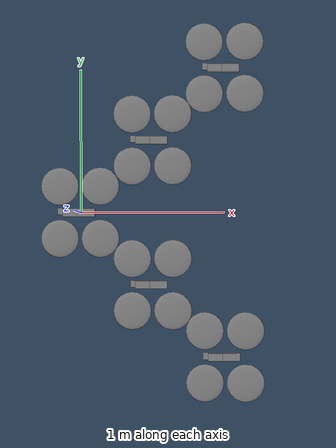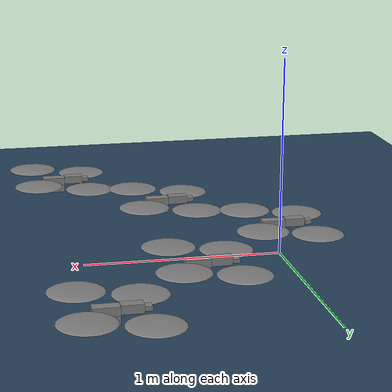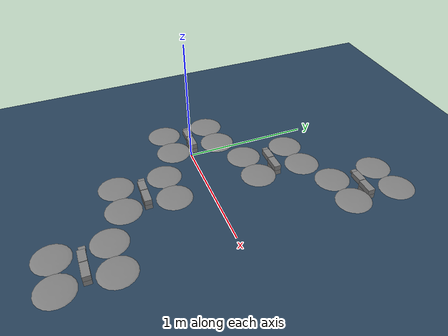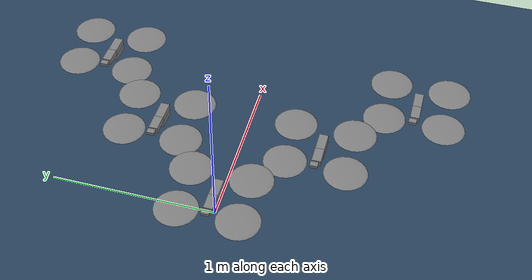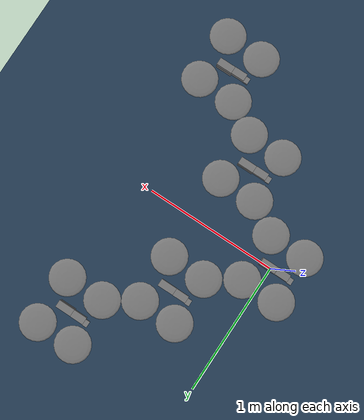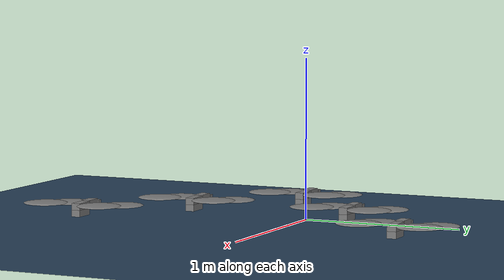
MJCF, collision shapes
<mujoco model="Skydio X2 scene">
  <include file="x2_5.xml"/>

  <statistic center="0 0 0.1" extent="0.6" meansize=".05"/>

  <visual>
    <headlight diffuse="0.6 0.6 0.6" ambient="0.3 0.3 0.3" specular="0 0 0"/>
    <rgba haze="0.15 0.25 0.35 1"/>
    <global azimuth="-20" elevation="-20" ellipsoidinertia="true"/>
  </visual>

  <asset>
    <texture type="skybox" builtin="gradient" rgb1="0.3 0.5 0.7" rgb2="0 0 0" width="512" height="3072"/>
    <texture type="2d" name="groundplane" builtin="checker" mark="edge" rgb1="0.2 0.3 0.4" rgb2="0.1 0.2 0.3"
      markrgb="0.8 0.8 0.8" width="300" height="300"/>
    <material name="groundplane" texture="groundplane" texuniform="true" texrepeat="5 5" reflectance="0.2"/>
  </asset>

  <worldbody>
    <light pos="0 0 1.5" dir="0 0 -1" directional="true"/>
    <geom name="floor" size="0 0 0.05" type="plane" material="groundplane"/>
  </worldbody>
</mujoco>

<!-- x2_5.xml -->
<mujoco model="Skydio X2">
    <compiler autolimits="true" assetdir="assets"/>

    <option timestep="0.01" density="1.225" viscosity="1.8e-5"/>

    <default>
        <default class="x2">
            <geom mass="0"/>
            <motor ctrlrange="0 13"/>
            <mesh scale="0.01 0.01 0.01"/>
            <default class="visual">
                <geom group="2" type="mesh" contype="0" conaffinity="0"/>
            </default>
            <default class="collision">
                <geom group="3" type="box"/>
                <default class="rotor">
                    <geom type="ellipsoid" size=".13 .13 .01"/>
                </default>
            </default>
            <site group="5"/>
        </default>
    </default>

    <asset>
        <texture type="2d" file="X2_lowpoly_texture_SpinningProps_1024.png"/>
        <material name="phong3SG" texture="X2_lowpoly_texture_SpinningProps_1024"/>
        <material name="invisible" rgba="0 0 0 0"/>
        <mesh class="x2" file="X2_lowpoly.obj"/>
    </asset>

    <worldbody>
        <light name="spotlight" mode="targetbodycom" target="x2_1" pos="0 -1 2"/>
        <body name="x2_1" pos="0.0 0.0 0.1" childclass="x2">
            <freejoint/>
            <camera name="q1_track" pos="-1 0 .5" xyaxes="0 -1 0 1 0 2" mode="trackcom"/>
            <site name="q1_imu" pos="0 0 .02"/>
            <geom material="phong3SG" mesh="X2_lowpoly" class="visual" quat="0 0 1 1"/>
            <geom class="collision" size=".06 .027 .02" pos=".04 0 .02"/>
            <geom class="collision" size=".06 .027 .02" pos=".04 0 .06"/>
            <geom class="collision" size=".05 .027 .02" pos="-.07 0 .065"/>
            <geom class="collision" size=".023 .017 .01" pos="-.137 .008 .065" quat="1 0 0 1"/>
            <geom name="q1_rotor1" class="rotor" pos="-.14 -.18 .05" mass=".25"/>
            <geom name="q1_rotor2" class="rotor" pos="-.14 .18 .05" mass=".25"/>
            <geom name="q1_rotor3" class="rotor" pos=".14 .18 .08" mass=".25"/>
            <geom name="q1_rotor4" class="rotor" pos=".14 -.18 .08" mass=".25"/>
            <geom size=".16 .04 .02" pos="0 0 0.02" type="ellipsoid" mass=".325" class="visual" material="invisible"/>
            <site name="q1_thrust1" pos="-.14 -.18 .05"/>
            <site name="q1_thrust2" pos="-.14 .18 .05"/>
            <site name="q1_thrust3" pos=".14 .18 .08"/>
            <site name="q1_thrust4" pos=".14 -.18 .08"/>
        </body>
        <body name="x2_2" pos="0.5 -0.5 0.1" childclass="x2">
            <freejoint/>
            <camera name="q2_track" pos="-1 0 .5" xyaxes="0 -1 0 1 0 2" mode="trackcom"/>
            <site name="q2_imu" pos="0 0 .02"/>
            <geom material="phong3SG" mesh="X2_lowpoly" class="visual" quat="0 0 1 1"/>
            <geom class="collision" size=".06 .027 .02" pos=".04 0 .02"/>
            <geom class="collision" size=".06 .027 .02" pos=".04 0 .06"/>
            <geom class="collision" size=".05 .027 .02" pos="-.07 0 .065"/>
            <geom class="collision" size=".023 .017 .01" pos="-.137 .008 .065" quat="1 0 0 1"/>
            <geom name="q2_rotor1" class="rotor" pos="-.14 -.18 .05" mass=".25"/>
            <geom name="q2_rotor2" class="rotor" pos="-.14 .18 .05" mass=".25"/>
            <geom name="q2_rotor3" class="rotor" pos=".14 .18 .08" mass=".25"/>
            <geom name="q2_rotor4" class="rotor" pos=".14 -.18 .08" mass=".25"/>
            <geom size=".16 .04 .02" pos="0 0 0.02" type="ellipsoid" mass=".325" class="visual" material="invisible"/>
            <site name="q2_thrust1" pos="-.14 -.18 .05"/>
            <site name="q2_thrust2" pos="-.14 .18 .05"/>
            <site name="q2_thrust3" pos=".14 .18 .08"/>
            <site name="q2_thrust4" pos=".14 -.18 .08"/>
        </body>
        <body name="x2_3" pos="0.5 0.5 0.1" childclass="x2">
            <freejoint/>
            <camera name="q3_track" pos="-1 0 .5" xyaxes="0 -1 0 1 0 2" mode="trackcom"/>
            <site name="q3_imu" pos="0 0 .02"/>
            <geom material="phong3SG" mesh="X2_lowpoly" class="visual" quat="0 0 1 1"/>
            <geom class="collision" size=".06 .027 .02" pos=".04 0 .02"/>
            <geom class="collision" size=".06 .027 .02" pos=".04 0 .06"/>
            <geom class="collision" size=".05 .027 .02" pos="-.07 0 .065"/>
            <geom class="collision" size=".023 .017 .01" pos="-.137 .008 .065" quat="1 0 0 1"/>
            <geom name="q3_rotor1" class="rotor" pos="-.14 -.18 .05" mass=".25"/>
            <geom name="q3_rotor2" class="rotor" pos="-.14 .18 .05" mass=".25"/>
            <geom name="q3_rotor3" class="rotor" pos=".14 .18 .08" mass=".25"/>
            <geom name="q3_rotor4" class="rotor" pos=".14 -.18 .08" mass=".25"/>
            <geom size=".16 .04 .02" pos="0 0 0.02" type="ellipsoid" mass=".325" class="visual" material="invisible"/>
            <site name="q3_thrust1" pos="-.14 -.18 .05"/>
            <site name="q3_thrust2" pos="-.14 .18 .05"/>
            <site name="q3_thrust3" pos=".14 .18 .08"/>
            <site name="q3_thrust4" pos=".14 -.18 .08"/>
        </body>
        <body name="x2_4" pos="1.0 -1.0 0.1" childclass="x2">
            <freejoint/>
            <camera name="q4_track" pos="-1 0 .5" xyaxes="0 -1 0 1 0 2" mode="trackcom"/>
            <site name="q4_imu" pos="0 0 .02"/>
            <geom material="phong3SG" mesh="X2_lowpoly" class="visual" quat="0 0 1 1"/>
            <geom class="collision" size=".06 .027 .02" pos=".04 0 .02"/>
            <geom class="collision" size=".06 .027 .02" pos=".04 0 .06"/>
            <geom class="collision" size=".05 .027 .02" pos="-.07 0 .065"/>
            <geom class="collision" size=".023 .017 .01" pos="-.137 .008 .065" quat="1 0 0 1"/>
            <geom name="q4_rotor1" class="rotor" pos="-.14 -.18 .05" mass=".25"/>
            <geom name="q4_rotor2" class="rotor" pos="-.14 .18 .05" mass=".25"/>
            <geom name="q4_rotor3" class="rotor" pos=".14 .18 .08" mass=".25"/>
            <geom name="q4_rotor4" class="rotor" pos=".14 -.18 .08" mass=".25"/>
            <geom size=".16 .04 .02" pos="0 0 0.02" type="ellipsoid" mass=".325" class="visual" material="invisible"/>
            <site name="q4_thrust1" pos="-.14 -.18 .05"/>
            <site name="q4_thrust2" pos="-.14 .18 .05"/>
            <site name="q4_thrust3" pos=".14 .18 .08"/>
            <site name="q4_thrust4" pos=".14 -.18 .08"/>
        </body>
        <body name="x2_5" pos="1.0 1.0 0.1" childclass="x2">
            <freejoint/>
            <camera name="q5_track" pos="-1 0 .5" xyaxes="0 -1 0 1 0 2" mode="trackcom"/>
            <site name="q5_imu" pos="0 0 .02"/>
            <geom material="phong3SG" mesh="X2_lowpoly" class="visual" quat="0 0 1 1"/>
            <geom class="collision" size=".06 .027 .02" pos=".04 0 .02"/>
            <geom class="collision" size=".06 .027 .02" pos=".04 0 .06"/>
            <geom class="collision" size=".05 .027 .02" pos="-.07 0 .065"/>
            <geom class="collision" size=".023 .017 .01" pos="-.137 .008 .065" quat="1 0 0 1"/>
            <geom name="q5_rotor1" class="rotor" pos="-.14 -.18 .05" mass=".25"/>
            <geom name="q5_rotor2" class="rotor" pos="-.14 .18 .05" mass=".25"/>
            <geom name="q5_rotor3" class="rotor" pos=".14 .18 .08" mass=".25"/>
            <geom name="q5_rotor4" class="rotor" pos=".14 -.18 .08" mass=".25"/>
            <geom size=".16 .04 .02" pos="0 0 0.02" type="ellipsoid" mass=".325" class="visual" material="invisible"/>
            <site name="q5_thrust1" pos="-.14 -.18 .05"/>
            <site name="q5_thrust2" pos="-.14 .18 .05"/>
            <site name="q5_thrust3" pos=".14 .18 .08"/>
            <site name="q5_thrust4" pos=".14 -.18 .08"/>
        </body>
    </worldbody>

    <actuator>
        <motor class="x2" name="q1_thrust1" site="q1_thrust1" gear="0 0 1 0 0  .0201"/>
        <motor class="x2" name="q1_thrust2" site="q1_thrust2" gear="0 0 1 0 0 -.0201"/>
        <motor class="x2" name="q1_thrust3" site="q1_thrust3" gear="0 0 1 0 0  .0201"/>
        <motor class="x2" name="q1_thrust4" site="q1_thrust4" gear="0 0 1 0 0 -.0201"/>

        <motor class="x2" name="q2_thrust1" site="q2_thrust1" gear="0 0 1 0 0  .0201"/>
        <motor class="x2" name="q2_thrust2" site="q2_thrust2" gear="0 0 1 0 0 -.0201"/>
        <motor class="x2" name="q2_thrust3" site="q2_thrust3" gear="0 0 1 0 0  .0201"/>
        <motor class="x2" name="q2_thrust4" site="q2_thrust4" gear="0 0 1 0 0 -.0201"/>

        <motor class="x2" name="q3_thrust1" site="q3_thrust1" gear="0 0 1 0 0  .0201"/>
        <motor class="x2" name="q3_thrust2" site="q3_thrust2" gear="0 0 1 0 0 -.0201"/>
        <motor class="x2" name="q3_thrust3" site="q3_thrust3" gear="0 0 1 0 0  .0201"/>
        <motor class="x2" name="q3_thrust4" site="q3_thrust4" gear="0 0 1 0 0 -.0201"/>

        <motor class="x2" name="q4_thrust1" site="q4_thrust1" gear="0 0 1 0 0  .0201"/>
        <motor class="x2" name="q4_thrust2" site="q4_thrust2" gear="0 0 1 0 0 -.0201"/>
        <motor class="x2" name="q4_thrust3" site="q4_thrust3" gear="0 0 1 0 0  .0201"/>
        <motor class="x2" name="q4_thrust4" site="q4_thrust4" gear="0 0 1 0 0 -.0201"/>

        <motor class="x2" name="q5_thrust1" site="q5_thrust1" gear="0 0 1 0 0  .0201"/>
        <motor class="x2" name="q5_thrust2" site="q5_thrust2" gear="0 0 1 0 0 -.0201"/>
        <motor class="x2" name="q5_thrust3" site="q5_thrust3" gear="0 0 1 0 0  .0201"/>
        <motor class="x2" name="q5_thrust4" site="q5_thrust4" gear="0 0 1 0 0 -.0201"/>
    </actuator>

    <keyframe>
        <key name="hover"
             qpos="0 0 .3 1 0 0 0 0.5 -0.5 0.3 1 0 0 0 0.5 0.5 0.3 1 0 0 0 1.0 -1.0 0.3 1 0 0 0 1.0 1.0 0.3 1 0 0 0"
             ctrl="3.2495625 3.2495625 3.2495625 3.2495625 3.2495625 3.2495625 3.2495625 3.2495625 3.2495625 3.2495625 3.2495625 3.2495625 3.2495625 3.2495625 3.2495625 3.2495625 3.2495625 3.2495625 3.2495625 3.2495625"/>
    </keyframe>

    <sensor>
        <gyro name="q1_body_gyro" site="q1_imu"/>
        <accelerometer name="q1_body_linacc" site="q1_imu"/>
        <framequat name="q1_body_quat" objtype="site" objname="q1_imu"/>

        <gyro name="q2_body_gyro" site="q2_imu"/>
        <accelerometer name="q2_body_linacc" site="q2_imu"/>
        <framequat name="q2_body_quat" objtype="site" objname="q2_imu"/>

        <gyro name="q3_body_gyro" site="q3_imu"/>
        <accelerometer name="q3_body_linacc" site="q3_imu"/>
        <framequat name="q3_body_quat" objtype="site" objname="q3_imu"/>

        <gyro name="q4_body_gyro" site="q4_imu"/>
        <accelerometer name="q4_body_linacc" site="q4_imu"/>
        <framequat name="q4_body_quat" objtype="site" objname="q4_imu"/>

        <gyro name="q5_body_gyro" site="q5_imu"/>
        <accelerometer name="q5_body_linacc" site="q5_imu"/>
        <framequat name="q5_body_quat" objtype="site" objname="q5_imu"/>
    </sensor>
</mujoco>
